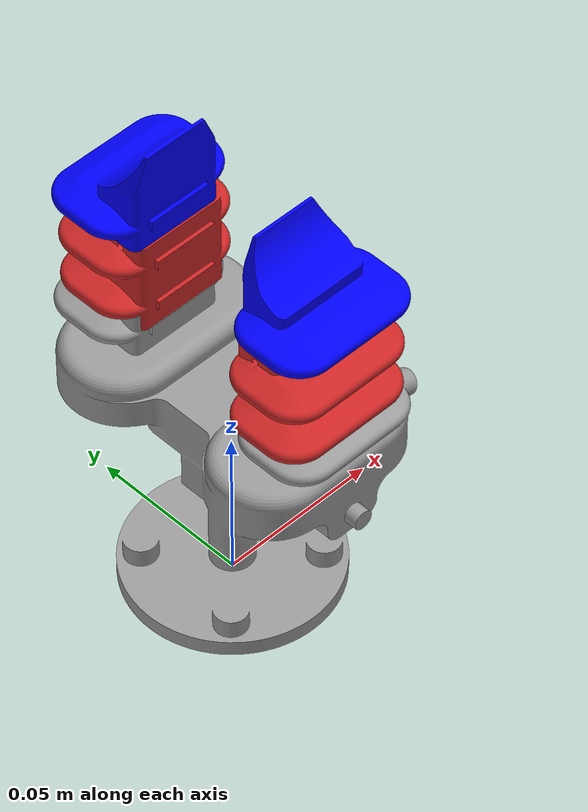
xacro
<?xml version="1.0"?>

<robot name="gripper" xmlns:xacro="http://ros.org/wiki/xacro">

		<xacro:arg name="transmission_hw_interface" default="hardware_interface/EffortJointInterface" />
		<xacro:arg name="grasp_plugin" default="true" />
		<xacro:arg name="gripper_active" default="false" />
		<xacro:arg name="soft_gripper" default="true" />

		<xacro:if value="$(arg soft_gripper)">
			<xacro:include filename="$(find gripper_description)/urdf/soft_gripper.macro.xacro" />
			<xacro:soft_gripper
			transmission_hw_interface="$(arg transmission_hw_interface)"
			grasp_plugin="$(arg grasp_plugin)"
			gripper_active="$(arg gripper_active)"/>
		</xacro:if>

		<xacro:unless value="$(arg soft_gripper)">
			<xacro:include filename="$(find gripper_description)/urdf/gripper.macro.xacro" />
	 		<xacro:gripper
				transmission_hw_interface="$(arg transmission_hw_interface)"
				grasp_plugin="$(arg grasp_plugin)"
				gripper_active="$(arg gripper_active)"/>
		</xacro:unless>

</robot>

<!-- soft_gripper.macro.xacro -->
<robot xmlns:xacro="http://wiki.ros.org/xacro">

<xacro:macro name="soft_gripper" params="transmission_hw_interface gripper_active grasp_plugin">

	  <xacro:include filename="$(find gripper_description)/urdf/soft_finger.xacro"/>
	  <xacro:property name="PI" value="3.1415926535897931"/>
	  <xacro:property name="cos_PI_3" value="0.5"/>
	  <xacro:property name="sin_PI_3" value="0.866"/>

	  <link name="gripper_base">
	    <visual>
	        <origin rpy="0 0 0" xyz="0 0 0.0" />
	   	<geometry>
		    <mesh filename="package://gripper_description/meshes/soft_gripper_base_down.stl"/>
		</geometry>
	    </visual>
	    <collision>
	        <origin rpy="0 0 0" xyz="0 0 -0.0095" />
	    <geometry>
		    <mesh filename="package://gripper_description/meshes/soft_gripper_base_down.stl"/>
		</geometry>
	    </collision>
	    <inertial>
		<origin xyz="2.073e-05   1.45286e-03  -1.1049e-03" rpy="0 0 0" />
		<mass value="0.168" />
		<inertia ixx="6.69695624e-05" ixy="5.21511788e-09" ixz="-2.74383009e-08" iyy="7.85088161e-05" iyz="5.41105193e-07" izz="1.41819717e-04" />
	    </inertial>
	  </link>

	<joint name="fixed_ee_gripper" type="fixed">
			<origin xyz="0 0 0.12" rpy="0 0 0"/>
			<parent link="gripper_base"/>
			<child  link="tool0"/>
	</joint>
	<link name="tool0"/>

	<xacro:soft_finger
		name="hand_1"
		parent="gripper_base"
		transmission_hw_interface="${transmission_hw_interface}"
		gripper_active="${gripper_active}">
		<origin xyz="0 -0.028 0.09" rpy=" 0 0 0" />
	</xacro:soft_finger>

	<xacro:soft_finger
		name="hand_2"
		parent="gripper_base"
		transmission_hw_interface="${transmission_hw_interface}"
		gripper_active="${gripper_active}">
		 <origin xyz="0 0.028 0.09" rpy=" 0 0 ${-pi}" />
	</xacro:soft_finger>

	  <gazebo reference="gripper_base">
		<material>Gazebo/Grey</material>
	  </gazebo>

	<!-- the plugin for grasping that creates a dynamic link with the object when grasping forces are sent is described here:-->
	<!-- https://github-wiki-see.page/m/JenniferBuehler/gazebo-pkgs/wiki/The-Gazebo-grasp-fix-plugin-->
	<xacro:if value="${grasp_plugin}">
		<gazebo>
		   <plugin name="gazebo_grasp_fix" filename="libgazebo_grasp_fix.so">
			<arm>
			   <arm_name>ur5</arm_name>
			   <palm_link> wrist_3_link  </palm_link>
			   <gripper_link> hand_1_link </gripper_link>
			   <gripper_link> hand_2_link </gripper_link>
			</arm>
		       <forces_angle_tolerance>100</forces_angle_tolerance>
		       <update_rate>500</update_rate>
		       <grip_count_threshold>4</grip_count_threshold>
		       <max_grip_count>20</max_grip_count>
		       <release_tolerance>0.01</release_tolerance>
		       <disable_collisions_on_attach>true</disable_collisions_on_attach>
		       <contact_topic>__default_topic__</contact_topic>
		    </plugin>
		</gazebo>

	</xacro:if>

  </xacro:macro>
</robot>

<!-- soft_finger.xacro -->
<robot xmlns:xacro="http://ros.org/wiki/xacro">
 <xacro:include filename="$(find gripper_description)/urdf/finger_transmission.xacro" />

  <material name="Grey">
    <color rgba="0.2 0.2 0.2 1" />
  </material>
  <material name="Blue">
    <color rgba="0 0 1 1" />
  </material>

<xacro:macro name="soft_finger" params="name parent transmission_hw_interface gripper_active *origin">

	<xacro:if value="${gripper_active}">
	  <xacro:finger_transmission name="${name}" hw_interface="${transmission_hw_interface}" />

	  <joint name="${name}_joint" type="revolute">
	    <parent link="${parent}"/>
	    <child link="${name}_link"/>
	    <axis xyz="1 0 0"/>
	    <xacro:insert_block name="origin"/>
	    <limit effort="50" velocity="10.0" lower="-0.5" upper="0.3" />
	  </joint>

	</xacro:if>

	<xacro:unless value="${gripper_active}">
	  <joint name="${name}_joint" type="fixed">
	    <parent link="${parent}"/>
	    <child link="${name}_link"/>
	    <xacro:insert_block name="origin"/>
	  </joint>
	</xacro:unless>

	<link name="${name}_link">
	<inertial>
		<origin xyz="2.073e-05   1.45286e-03  -1.1049e-03" rpy="0 0 0" />
		<mass value="0.168" />
		<inertia ixx="6.69695624e-05" ixy="5.21511788e-09" ixz="-2.74383009e-08" iyy="7.85088161e-05" iyz="5.41105193e-07" izz="1.41819717e-04" />
	</inertial>
	<visual>
	<origin rpy="0 0 0" xyz="0 0 0" />
		<geometry>
		    <mesh filename="package://gripper_description/meshes/soft_gripper_finger1.stl"/>
		</geometry>
	</visual>
	<collision>
	<origin rpy="0 0 0" xyz="0 0 0" />
		<geometry>
		    <mesh filename="package://gripper_description/meshes/soft_gripper_finger1.stl"/>
		</geometry>
	</collision>
	</link>

	<joint name="${name}_joint2" type="fixed">
	<origin xyz="0 0.009 0.042" rpy=" 0 0 0" />
	<parent link="${name}_link" />
	<child link="${name}_link2" />
	</joint>

	<link name="${name}_link2">
	<visual>
		<geometry>
		  <mesh filename="package://gripper_description/meshes/soft_gripper_finger2.stl" />
		</geometry>
	<material name="Blue" />
	</visual>
	<collision>
		<geometry>
		  <mesh filename="package://gripper_description/meshes/soft_gripper_finger2.stl" />
		</geometry>
	</collision>
	<inertial>
	<origin xyz="2.073e-05   1.45286e-03  -1.1049e-03" rpy="0 0 0" />
		<mass value="0.168" />
		<inertia ixx="6.69695624e-05" ixy="5.21511788e-09" ixz="-2.74383009e-08" iyy="7.85088161e-05" iyz="5.41105193e-07" izz="1.41819717e-04" />
	</inertial>
	</link>

	  <gazebo reference="${name}_link2">
		<material>Gazebo/Blue</material>
	  </gazebo>

	    <gazebo reference="${name}_link2">
		<material>Gazebo/Blue</material>
	  </gazebo>

	 <gazebo reference="${name}_link">
	    <collision name="${name}_link_collision">
	      <surface>
		<friction>
		  <torsional>
		    <coefficient>10.0</coefficient>
		    <use_patch_radius>true</use_patch_radius>
		    <patch_radius>0.05</patch_radius>
		  </torsional>
		</friction>
		<contact>
		  <poissons_ratio>0.5</poissons_ratio>
		  <elastic_modulus>1e8</elastic_modulus>
		</contact>
	      </surface>
	    </collision>
	    <mu1>10</mu1>
	    <mu2>10</mu2>

	    <kp>1000000.0</kp>
	    <kd>10.0</kd>
	    <fdir1>0 0 1</fdir1>
	    <minDepth>0.001</minDepth>
		    <maxVel>0.0</maxVel>

	    <maxContacts>1</maxContacts>
	    <material>Gazebo/RedBright</material>
	  </gazebo>

</xacro:macro>
</robot>
